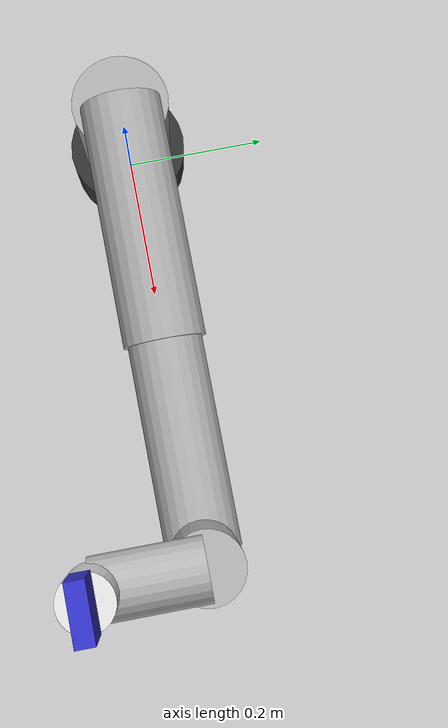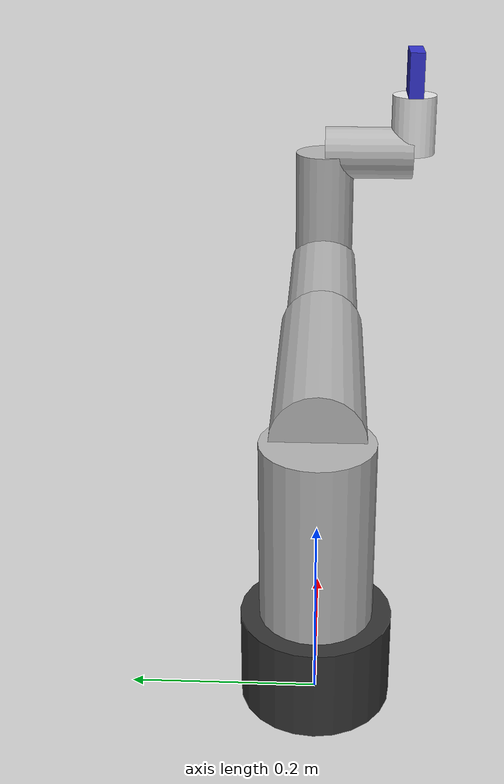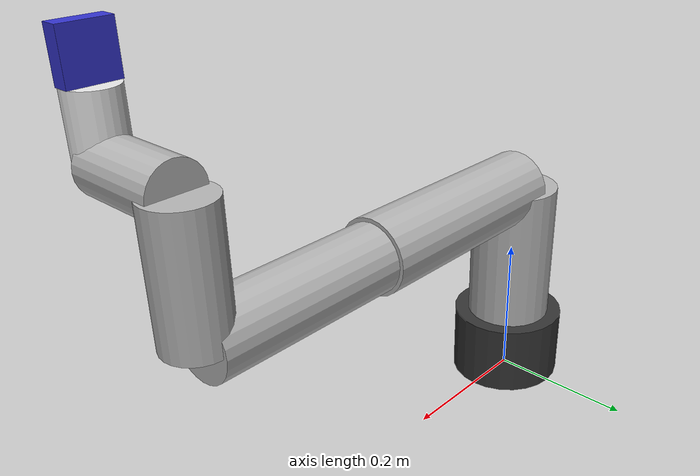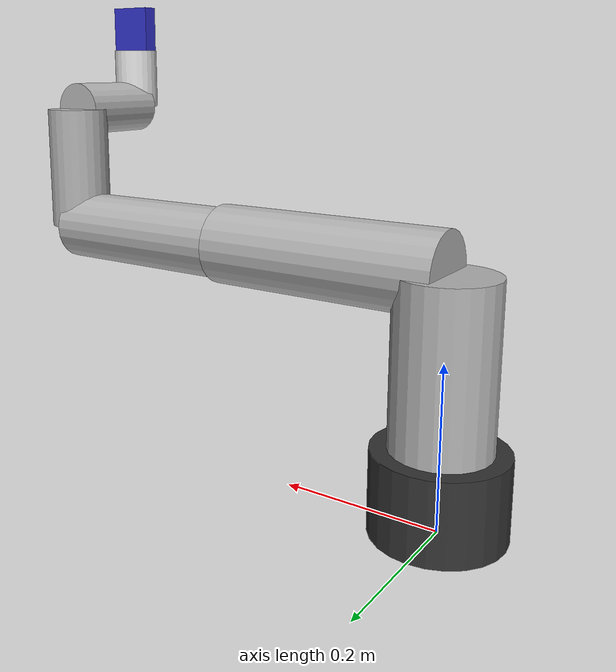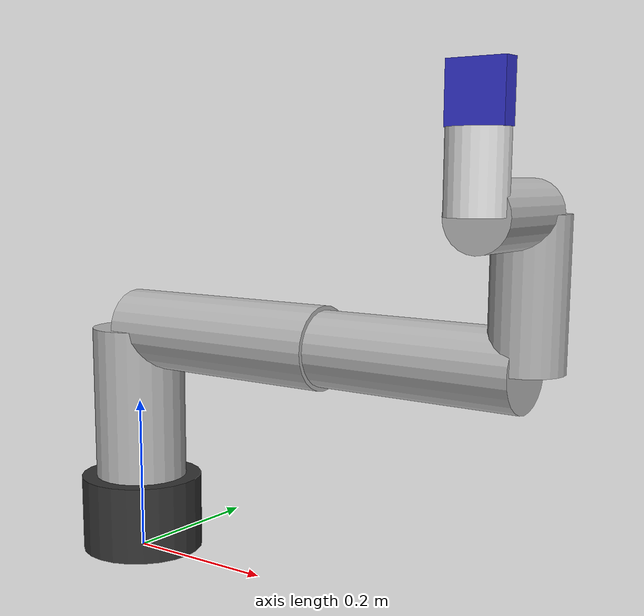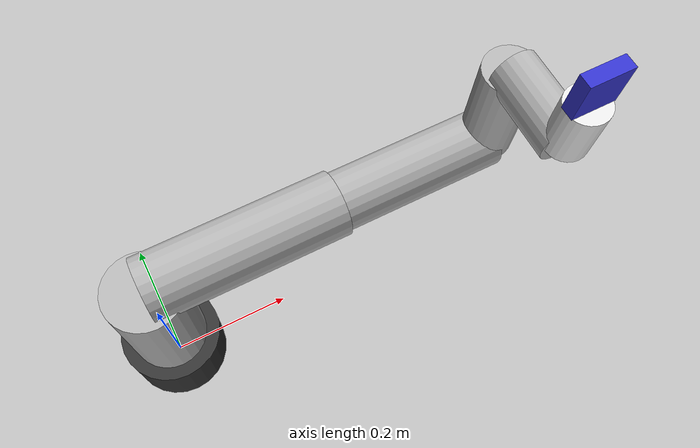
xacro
<?xml version="1.0"?>
<robot xmlns:xacro="http://www.ros.org/wiki/xacro" name="xarm_6">

  <!-- Include the base URDF -->
  <xacro:include filename="$(find xarm_6_description)/urdf/xarm_6.urdf" />

  <!-- ROS2 Control Configuration -->
  <ros2_control name="XArmHardwareInterface" type="system">
    <hardware>
      <plugin>mock_components/GenericSystem</plugin>
      <param name="mock_sensor_commands">false</param>
      <param name="state_following_offset">0.0</param>
    </hardware>

    <!-- Joint 1 -->
    <joint name="joint1">
      <command_interface name="position">
        <param name="min">-6.28</param>
        <param name="max">6.28</param>
      </command_interface>
      <state_interface name="position"/>
      <state_interface name="velocity"/>
    </joint>

    <!-- Joint 2 -->
    <joint name="joint2">
      <command_interface name="position">
        <param name="min">-2.09</param>
        <param name="max">2.09</param>
      </command_interface>
      <state_interface name="position"/>
      <state_interface name="velocity"/>
    </joint>

    <!-- Joint 3 -->
    <joint name="joint3">
      <command_interface name="position">
        <param name="min">-6.28</param>
        <param name="max">6.28</param>
      </command_interface>
      <state_interface name="position"/>
      <state_interface name="velocity"/>
    </joint>

    <!-- Joint 4 -->
    <joint name="joint4">
      <command_interface name="position">
        <param name="min">-6.28</param>
        <param name="max">6.28</param>
      </command_interface>
      <state_interface name="position"/>
      <state_interface name="velocity"/>
    </joint>

    <!-- Joint 5 -->
    <joint name="joint5">
      <command_interface name="position">
        <param name="min">-1.69</param>
        <param name="max">3.84</param>
      </command_interface>
      <state_interface name="position"/>
      <state_interface name="velocity"/>
    </joint>

    <!-- Joint 6 -->
    <joint name="joint6">
      <command_interface name="position">
        <param name="min">-6.28</param>
        <param name="max">6.28</param>
      </command_interface>
      <state_interface name="position"/>
      <state_interface name="velocity"/>
    </joint>

    <!-- Gripper Joint -->
    <joint name="gripper_joint">
      <command_interface name="position">
        <param name="min">0.0</param>
        <param name="max">0.04</param>
      </command_interface>
      <state_interface name="position"/>
      <state_interface name="velocity"/>
    </joint>

  </ros2_control>

</robot>

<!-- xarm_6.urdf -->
<robot name="xarm_6">

  <!-- Base Link -->
  <link name="base_link">
    <inertial>
      <origin xyz="0 0 0.05" rpy="0 0 0" />
      <mass value="2.5" />
      <inertia
        ixx="0.00208333" ixy="0" ixz="0"
        iyy="0.00208333" iyz="0"
        izz="0.00208333" />
    </inertial>
    <visual>
      <origin xyz="0 0 0.05" rpy="0 0 0" />
      <geometry>
        <cylinder radius="0.08" length="0.1" />
      </geometry>
      <material name="base_material">
        <color rgba="0.2 0.2 0.2 1" />
      </material>
    </visual>
    <collision>
      <origin xyz="0 0 0.05" rpy="0 0 0" />
      <geometry>
        <cylinder radius="0.08" length="0.1" />
      </geometry>
    </collision>
  </link>

  <!-- Link 1 -->
  <link name="link1">
    <inertial>
      <origin xyz="0 0 0.1" rpy="0 0 0" />
      <mass value="1.8" />
      <inertia
        ixx="0.00520833" ixy="0" ixz="0"
        iyy="0.00520833" iyz="0"
        izz="0.00208333" />
    </inertial>
    <visual>
      <origin xyz="0 0 0.1" rpy="0 0 0" />
      <geometry>
        <cylinder radius="0.06" length="0.2" />
      </geometry>
      <material name="link_material">
        <color rgba="0.7 0.7 0.7 1" />
      </material>
    </visual>
    <collision>
      <origin xyz="0 0 0.1" rpy="0 0 0" />
      <geometry>
        <cylinder radius="0.06" length="0.2" />
      </geometry>
    </collision>
  </link>

  <!-- Joint 1: Base to Link1 -->
  <joint name="joint1" type="revolute">
    <origin xyz="0 0 0.1" rpy="0 0 0" />
    <parent link="base_link" />
    <child link="link1" />
    <axis xyz="0 0 1" />
    <limit lower="-6.28" upper="6.28" effort="50" velocity="3.14" />
  </joint>

  <!-- Link 2 -->
  <link name="link2">
    <inertial>
      <origin xyz="0.15 0 0" rpy="0 0 0" />
      <mass value="1.5" />
      <inertia
        ixx="0.00208333" ixy="0" ixz="0"
        iyy="0.00781250" iyz="0"
        izz="0.00781250" />
    </inertial>
    <visual>
      <origin xyz="0.15 0 0" rpy="0 1.5708 0" />
      <geometry>
        <cylinder radius="0.05" length="0.3" />
      </geometry>
      <material name="link_material">
        <color rgba="0.7 0.7 0.7 1" />
      </material>
    </visual>
    <collision>
      <origin xyz="0.15 0 0" rpy="0 1.5708 0" />
      <geometry>
        <cylinder radius="0.05" length="0.3" />
      </geometry>
    </collision>
  </link>

  <!-- Joint 2: Link1 to Link2 -->
  <joint name="joint2" type="revolute">
    <origin xyz="0 0 0.2" rpy="1.5708 0 0" />
    <parent link="link1" />
    <child link="link2" />
    <axis xyz="0 0 1" />
    <limit lower="-2.09" upper="2.09" effort="50" velocity="3.14" />
  </joint>

  <!-- Link 3 -->
  <link name="link3">
    <inertial>
      <origin xyz="0.125 0 0" rpy="0 0 0" />
      <mass value="1.2" />
      <inertia
        ixx="0.00208333" ixy="0" ixz="0"
        iyy="0.00520833" iyz="0"
        izz="0.00520833" />
    </inertial>
    <visual>
      <origin xyz="0.125 0 0" rpy="0 1.5708 0" />
      <geometry>
        <cylinder radius="0.045" length="0.25" />
      </geometry>
      <material name="link_material">
        <color rgba="0.7 0.7 0.7 1" />
      </material>
    </visual>
    <collision>
      <origin xyz="0.125 0 0" rpy="0 1.5708 0" />
      <geometry>
        <cylinder radius="0.045" length="0.25" />
      </geometry>
    </collision>
  </link>

  <!-- Joint 3: Link2 to Link3 -->
  <joint name="joint3" type="revolute">
    <origin xyz="0.3 0 0" rpy="0 0 0" />
    <parent link="link2" />
    <child link="link3" />
    <axis xyz="0 0 1" />
    <limit lower="-6.28" upper="6.28" effort="30" velocity="3.14" />
  </joint>

  <!-- Link 4 -->
  <link name="link4">
    <inertial>
      <origin xyz="0 0 0.08" rpy="0 0 0" />
      <mass value="0.8" />
      <inertia
        ixx="0.00208333" ixy="0" ixz="0"
        iyy="0.00208333" iyz="0"
        izz="0.00104167" />
    </inertial>
    <visual>
      <origin xyz="0 0 0.08" rpy="0 0 0" />
      <geometry>
        <cylinder radius="0.04" length="0.16" />
      </geometry>
      <material name="link_material">
        <color rgba="0.7 0.7 0.7 1" />
      </material>
    </visual>
    <collision>
      <origin xyz="0 0 0.08" rpy="0 0 0" />
      <geometry>
        <cylinder radius="0.04" length="0.16" />
      </geometry>
    </collision>
  </link>

  <!-- Joint 4: Link3 to Link4 -->
  <joint name="joint4" type="revolute">
    <origin xyz="0.25 0 0" rpy="-1.5708 0 0" />
    <parent link="link3" />
    <child link="link4" />
    <axis xyz="0 0 1" />
    <limit lower="-6.28" upper="6.28" effort="30" velocity="3.14" />
  </joint>

  <!-- Link 5 -->
  <link name="link5">
    <inertial>
      <origin xyz="0 0 0.06" rpy="0 0 0" />
      <mass value="0.6" />
      <inertia
        ixx="0.00104167" ixy="0" ixz="0"
        iyy="0.00104167" iyz="0"
        izz="0.00052083" />
    </inertial>
    <visual>
      <origin xyz="0 0 0.06" rpy="0 0 0" />
      <geometry>
        <cylinder radius="0.035" length="0.12" />
      </geometry>
      <material name="link_material">
        <color rgba="0.7 0.7 0.7 1" />
      </material>
    </visual>
    <collision>
      <origin xyz="0 0 0.06" rpy="0 0 0" />
      <geometry>
        <cylinder radius="0.035" length="0.12" />
      </geometry>
    </collision>
  </link>

  <!-- Joint 5: Link4 to Link5 -->
  <joint name="joint5" type="revolute">
    <origin xyz="0 0 0.16" rpy="1.5708 0 0" />
    <parent link="link4" />
    <child link="link5" />
    <axis xyz="0 0 1" />
    <limit lower="-1.69" upper="3.84" effort="20" velocity="3.14" />
  </joint>

  <!-- Link 6 (End Effector) -->
  <link name="link6">
    <inertial>
      <origin xyz="0 0 0.04" rpy="0 0 0" />
      <mass value="0.4" />
      <inertia
        ixx="0.00052083" ixy="0" ixz="0"
        iyy="0.00052083" iyz="0"
        izz="0.00026042" />
    </inertial>
    <visual>
      <origin xyz="0 0 0.04" rpy="0 0 0" />
      <geometry>
        <cylinder radius="0.03" length="0.08" />
      </geometry>
      <material name="end_effector_material">
        <color rgba="0.9 0.9 0.9 1" />
      </material>
    </visual>
    <collision>
      <origin xyz="0 0 0.04" rpy="0 0 0" />
      <geometry>
        <cylinder radius="0.03" length="0.08" />
      </geometry>
    </collision>
  </link>

  <!-- Joint 6: Link5 to Link6 -->
  <joint name="joint6" type="revolute">
    <origin xyz="0 0 0.12" rpy="-1.5708 0 0" />
    <parent link="link5" />
    <child link="link6" />
    <axis xyz="0 0 1" />
    <limit lower="-6.28" upper="6.28" effort="20" velocity="3.14" />
  </joint>

  <!-- Tool Center Point (TCP) -->
  <link name="tcp_link" />

  <joint name="tcp_joint" type="fixed">
    <origin xyz="0 0 0.08" rpy="0 0 0" />
    <parent link="link6" />
    <child link="tcp_link" />
  </joint>

  <!-- Optional Gripper Link -->
  <link name="gripper_link">
    <inertial>
      <origin xyz="0 0 0.03" rpy="0 0 0" />
      <mass value="0.2" />
      <inertia
        ixx="0.00013" ixy="0" ixz="0"
        iyy="0.00013" iyz="0"
        izz="0.00013" />
    </inertial>
    <visual>
      <origin xyz="0 0 0.03" rpy="0 0 0" />
      <geometry>
        <box size="0.06 0.02 0.06" />
      </geometry>
      <material name="gripper_material">
        <color rgba="0.2 0.2 0.8 1" />
      </material>
    </visual>
    <collision>
      <origin xyz="0 0 0.03" rpy="0 0 0" />
      <geometry>
        <box size="0.06 0.02 0.06" />
      </geometry>
    </collision>
  </link>

  <!-- Gripper Joint -->
  <joint name="gripper_joint" type="fixed">
    <origin xyz="0 0 0.08" rpy="0 0 0" />
    <parent link="link6" />
    <child link="gripper_link" />
  </joint>

</robot>
